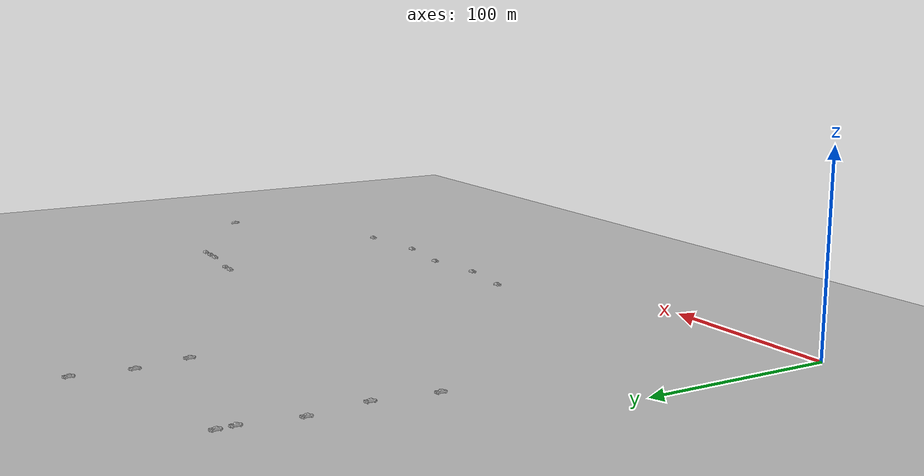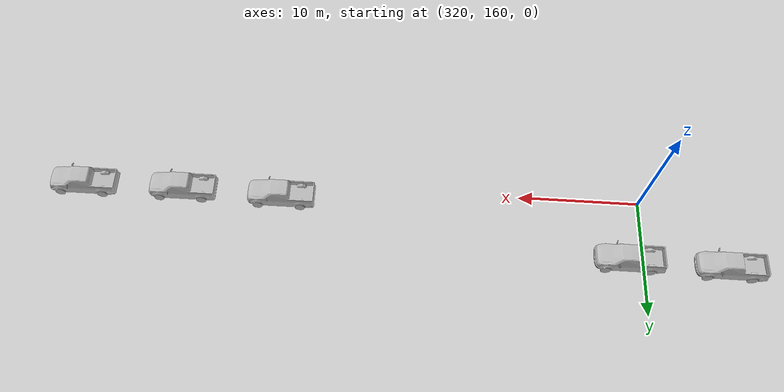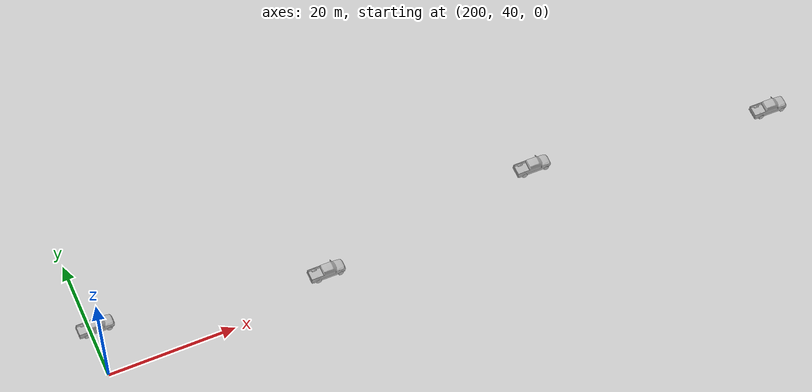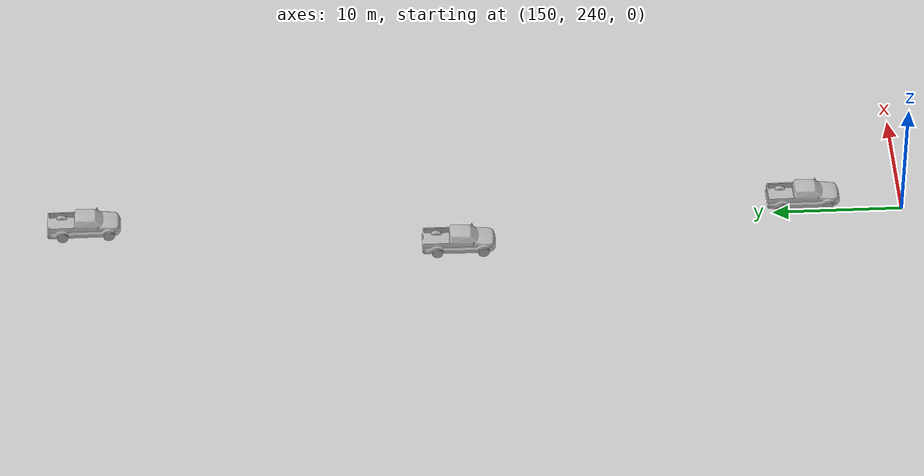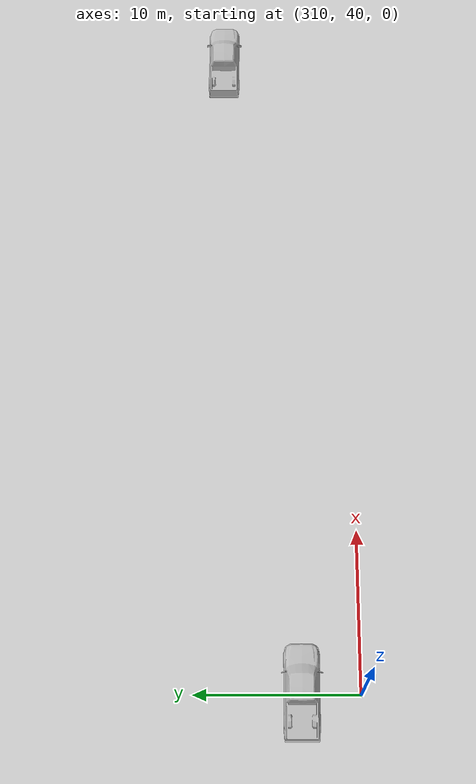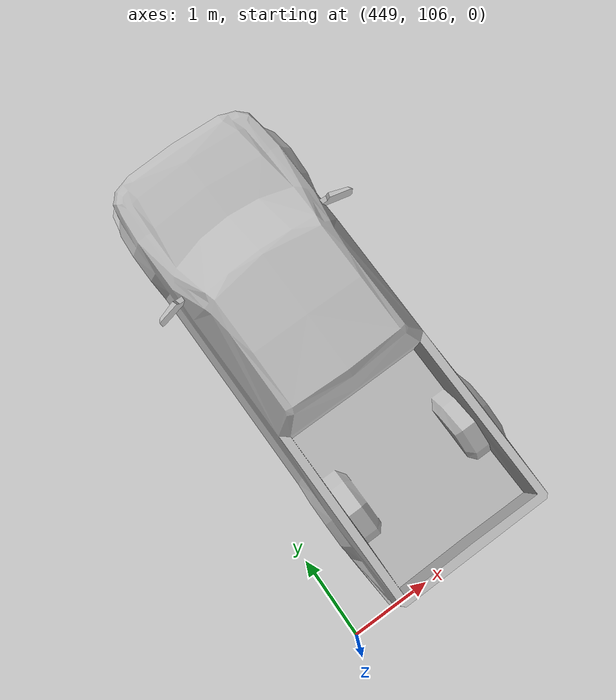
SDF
<sdf version="1.6">
 <world name="default">
  <light name="sun" type="directional">
   <pose>0 0 10 0 -0 0</pose>
   <diffuse>0.8 0.8 0.8 1</diffuse>
   <specular>0.2 0.2 0.2 1</specular>
   <attenuation>
    <range>1000</range>
    <constant>0.9</constant>
    <linear>0.01</linear>
    <quadratic>0.001</quadratic>
   </attenuation>
   <direction>-0.5 0.1 -0.9</direction>
  </light>
  <gravity>0 0 -9.8</gravity>
  <magnetic_field>6e-06 2.3e-05 -4.2e-05</magnetic_field>
  <atmosphere type="adiabatic"/>
  <physics name="default_physics" default="0" type="ode">
   <max_step_size>0.001</max_step_size>
   <real_time_factor>1</real_time_factor>
   <real_time_update_rate>1000</real_time_update_rate>
  </physics>
  <scene><ambient>0.4 0.4 0.4 1</ambient><background>0.7 0.7 0.7 1</background><shadows>1</shadows></scene>
  <spherical_coordinates>
   <surface_model>EARTH_WGS84</surface_model>
   <latitude_deg>0</latitude_deg>
   <longitude_deg>0</longitude_deg>
   <elevation>0</elevation>
   <heading_deg>0</heading_deg>
  </spherical_coordinates>
  <model name="pickup">
   <static>1</static>
   <link name="link">
    <collision name="collision">
     <pose>0 0 0 0 0 -1.5708</pose>
     <geometry><mesh><uri>model://pickup/meshes/pickup.dae</uri></mesh></geometry>
    </collision>
    <visual name="visual">
     <pose>0 0 0 0 0 -1.5708</pose>
     <geometry><mesh><uri>model://pickup/meshes/pickup.dae</uri></mesh></geometry>
    </visual>
   </link>
   <pose>272.172 48.2114 -0.03716 0 -0 0.001836</pose>
  </model>
  <model name="pickup_0">
   <static>1</static>
   <link name="link">
    <collision name="collision">
     <pose>0 0 0 0 0 -1.5708</pose>
     <geometry><mesh><uri>model://pickup/meshes/pickup.dae</uri></mesh></geometry>
    </collision>
    <visual name="visual">
     <pose>0 0 0 0 0 -1.5708</pose>
     <geometry><mesh><uri>model://pickup/meshes/pickup.dae</uri></mesh></geometry>
    </visual>
   </link>
   <pose>201.049 48.0803 -0.036166 0 -0 0.001943</pose>
  </model>
  <model name="pickup_1">
   <static>1</static>
   <link name="link">
    <collision name="collision">
     <pose>0 0 0 0 0 -1.5708</pose>
     <geometry><mesh><uri>model://pickup/meshes/pickup.dae</uri></mesh></geometry>
    </collision>
    <visual name="visual">
     <pose>0 0 0 0 0 -1.5708</pose>
     <geometry><mesh><uri>model://pickup/meshes/pickup.dae</uri></mesh></geometry>
    </visual>
   </link>
   <pose>236.148 43.3343 -0.030696 0 -0 0.00516</pose>
  </model>
  <model name="ground_plane">
   <static>1</static>
   <link name="link">
    <collision name="collision">
     <geometry><plane><normal>0 0 1</normal><size>100 100</size></plane></geometry>
     <surface>
      <contact><collide_bitmask>65535</collide_bitmask></contact>
      <friction><ode><mu>100</mu><mu2>50</mu2></ode></friction>
     </surface>
    </collision>
    <visual name="visual">
     <cast_shadows>0</cast_shadows>
     <geometry><plane><normal>0 0 1</normal><size>100 100</size></plane></geometry>
     <material>
      <script><uri>file://media/materials/scripts/gazebo.material</uri><name>Gazebo/Grey</name></script>
     </material>
    </visual>
   </link>
   <pose>-71.9057 50.7672 0 0 -0 0</pose>
  </model>
  <model name="pickup_2">
   <static>1</static>
   <link name="link">
    <collision name="collision">
     <pose>0 0 0 0 0 -1.5708</pose>
     <geometry><mesh><uri>model://pickup/meshes/pickup.dae</uri></mesh></geometry>
    </collision>
    <visual name="visual">
     <pose>0 0 0 0 0 -1.5708</pose>
     <geometry><mesh><uri>model://pickup/meshes/pickup.dae</uri></mesh></geometry>
    </visual>
   </link>
   <pose>310.218 43.5195 0 0 -0 0</pose>
  </model>
  <model name="pickup_3">
   <static>1</static>
   <link name="link">
    <collision name="collision">
     <pose>0 0 0 0 0 -1.5708</pose>
     <geometry><mesh><uri>model://pickup/meshes/pickup.dae</uri></mesh></geometry>
    </collision>
    <visual name="visual">
     <pose>0 0 0 0 0 -1.5708</pose>
     <geometry><mesh><uri>model://pickup/meshes/pickup.dae</uri></mesh></geometry>
    </visual>
   </link>
   <pose>354.538 48.6341 0 0 -0 0</pose>
  </model>
  <model name="pickup_4">
   <static>1</static>
   <link name="link">
    <collision name="collision">
     <pose>0 0 0 0 0 -1.5708</pose>
     <geometry><mesh><uri>model://pickup/meshes/pickup.dae</uri></mesh></geometry>
    </collision>
    <visual name="visual">
     <pose>0 0 0 0 0 -1.5708</pose>
     <geometry><mesh><uri>model://pickup/meshes/pickup.dae</uri></mesh></geometry>
    </visual>
   </link>
   <pose>450.508 109.088 0 0 -0 1.58442</pose>
  </model>
  <model name="pickup_5">
   <static>1</static>
   <link name="link">
    <collision name="collision">
     <pose>0 0 0 0 0 -1.5708</pose>
     <geometry><mesh><uri>model://pickup/meshes/pickup.dae</uri></mesh></geometry>
    </collision>
    <visual name="visual">
     <pose>0 0 0 0 0 -1.5708</pose>
     <geometry><mesh><uri>model://pickup/meshes/pickup.dae</uri></mesh></geometry>
    </visual>
   </link>
   <pose>366.898 161.093 0 0 -0 0</pose>
  </model>
  <model name="pickup_6">
   <static>1</static>
   <link name="link">
    <collision name="collision">
     <pose>0 0 0 0 0 -1.5708</pose>
     <geometry><mesh><uri>model://pickup/meshes/pickup.dae</uri></mesh></geometry>
    </collision>
    <visual name="visual">
     <pose>0 0 0 0 0 -1.5708</pose>
     <geometry><mesh><uri>model://pickup/meshes/pickup.dae</uri></mesh></geometry>
    </visual>
   </link>
   <pose>358.468 161.093 0 0 -0 0</pose>
  </model>
  <model name="pickup_7">
   <static>1</static>
   <link name="link">
    <collision name="collision">
     <pose>0 0 0 0 0 -1.5708</pose>
     <geometry><mesh><uri>model://pickup/meshes/pickup.dae</uri></mesh></geometry>
    </collision>
    <visual name="visual">
     <pose>0 0 0 0 0 -1.5708</pose>
     <geometry><mesh><uri>model://pickup/meshes/pickup.dae</uri></mesh></geometry>
    </visual>
   </link>
   <pose>350.122 161.262 0 0 -0 0</pose>
  </model>
  <model name="pickup_8">
   <static>1</static>
   <link name="link">
    <collision name="collision">
     <pose>0 0 0 0 0 -1.5708</pose>
     <geometry><mesh><uri>model://pickup/meshes/pickup.dae</uri></mesh></geometry>
    </collision>
    <visual name="visual">
     <pose>0 0 0 0 0 -1.5708</pose>
     <geometry><mesh><uri>model://pickup/meshes/pickup.dae</uri></mesh></geometry>
    </visual>
   </link>
   <pose>321.424 165.358 0 0 -0 0</pose>
  </model>
  <model name="pickup_9">
   <static>1</static>
   <link name="link">
    <collision name="collision">
     <pose>0 0 0 0 0 -1.5708</pose>
     <geometry><mesh><uri>model://pickup/meshes/pickup.dae</uri></mesh></geometry>
    </collision>
    <visual name="visual">
     <pose>0 0 0 0 0 -1.5708</pose>
     <geometry><mesh><uri>model://pickup/meshes/pickup.dae</uri></mesh></geometry>
    </visual>
   </link>
   <pose>313.334 165.528 0 0 -0 0</pose>
  </model>
  <model name="pickup_10">
   <static>1</static>
   <link name="link">
    <collision name="collision">
     <pose>0 0 0 0 0 -1.5708</pose>
     <geometry><mesh><uri>model://pickup/meshes/pickup.dae</uri></mesh></geometry>
    </collision>
    <visual name="visual">
     <pose>0 0 0 0 0 -1.5708</pose>
     <geometry><mesh><uri>model://pickup/meshes/pickup.dae</uri></mesh></geometry>
    </visual>
   </link>
   <pose>151.075 247.517 0 0 0 -1.56087</pose>
  </model>
  <model name="pickup_11">
   <static>1</static>
   <link name="link">
    <collision name="collision">
     <pose>0 0 0 0 0 -1.5708</pose>
     <geometry><mesh><uri>model://pickup/meshes/pickup.dae</uri></mesh></geometry>
    </collision>
    <visual name="visual">
     <pose>0 0 0 0 0 -1.5708</pose>
     <geometry><mesh><uri>model://pickup/meshes/pickup.dae</uri></mesh></geometry>
    </visual>
   </link>
   <pose>147.354 274.393 0 0 0 -1.58397</pose>
  </model>
  <model name="pickup_12">
   <static>1</static>
   <link name="link">
    <collision name="collision">
     <pose>0 0 0 0 0 -1.5708</pose>
     <geometry><mesh><uri>model://pickup/meshes/pickup.dae</uri></mesh></geometry>
    </collision>
    <visual name="visual">
     <pose>0 0 0 0 0 -1.5708</pose>
     <geometry><mesh><uri>model://pickup/meshes/pickup.dae</uri></mesh></geometry>
    </visual>
   </link>
   <pose>150.652 303.119 0 0 0 -1.56059</pose>
  </model>
  <model name="pickup_13">
   <static>1</static>
   <link name="link">
    <collision name="collision">
     <pose>0 0 0 0 0 -1.5708</pose>
     <geometry><mesh><uri>model://pickup/meshes/pickup.dae</uri></mesh></geometry>
    </collision>
    <visual name="visual">
     <pose>0 0 0 0 0 -1.5708</pose>
     <geometry><mesh><uri>model://pickup/meshes/pickup.dae</uri></mesh></geometry>
    </visual>
   </link>
   <pose>53.4875 271.304 0 0 0 -1.54623</pose>
  </model>
  <model name="pickup_14">
   <static>1</static>
   <link name="link">
    <collision name="collision">
     <pose>0 0 0 0 0 -1.5708</pose>
     <geometry><mesh><uri>model://pickup/meshes/pickup.dae</uri></mesh></geometry>
    </collision>
    <visual name="visual">
     <pose>0 0 0 0 0 -1.5708</pose>
     <geometry><mesh><uri>model://pickup/meshes/pickup.dae</uri></mesh></geometry>
    </visual>
   </link>
   <pose>54.0115 262.745 0 0 0 -1.56553</pose>
  </model>
  <model name="pickup_15">
   <static>1</static>
   <link name="link">
    <collision name="collision">
     <pose>0 0 0 0 0 -1.5708</pose>
     <geometry><mesh><uri>model://pickup/meshes/pickup.dae</uri></mesh></geometry>
    </collision>
    <visual name="visual">
     <pose>0 0 0 0 0 -1.5708</pose>
     <geometry><mesh><uri>model://pickup/meshes/pickup.dae</uri></mesh></geometry>
    </visual>
   </link>
   <pose>49.7877 234.236 0 0 0 -1.57164</pose>
  </model>
  <model name="pickup_16">
   <static>1</static>
   <link name="link">
    <collision name="collision">
     <pose>0 0 0 0 0 -1.5708</pose>
     <geometry><mesh><uri>model://pickup/meshes/pickup.dae</uri></mesh></geometry>
    </collision>
    <visual name="visual">
     <pose>0 0 0 0 0 -1.5708</pose>
     <geometry><mesh><uri>model://pickup/meshes/pickup.dae</uri></mesh></geometry>
    </visual>
   </link>
   <pose>53.6393 203.61 0 0 0 -1.57889</pose>
  </model>
  <model name="pickup_17">
   <static>1</static>
   <link name="link">
    <collision name="collision">
     <pose>0 0 0 0 0 -1.5708</pose>
     <geometry><mesh><uri>model://pickup/meshes/pickup.dae</uri></mesh></geometry>
    </collision>
    <visual name="visual">
     <pose>0 0 0 0 0 -1.5708</pose>
     <geometry><mesh><uri>model://pickup/meshes/pickup.dae</uri></mesh></geometry>
    </visual>
   </link>
   <pose>49.3868 172.293 0 0 0 -1.56912</pose>
  </model>
 </world>
</sdf>
